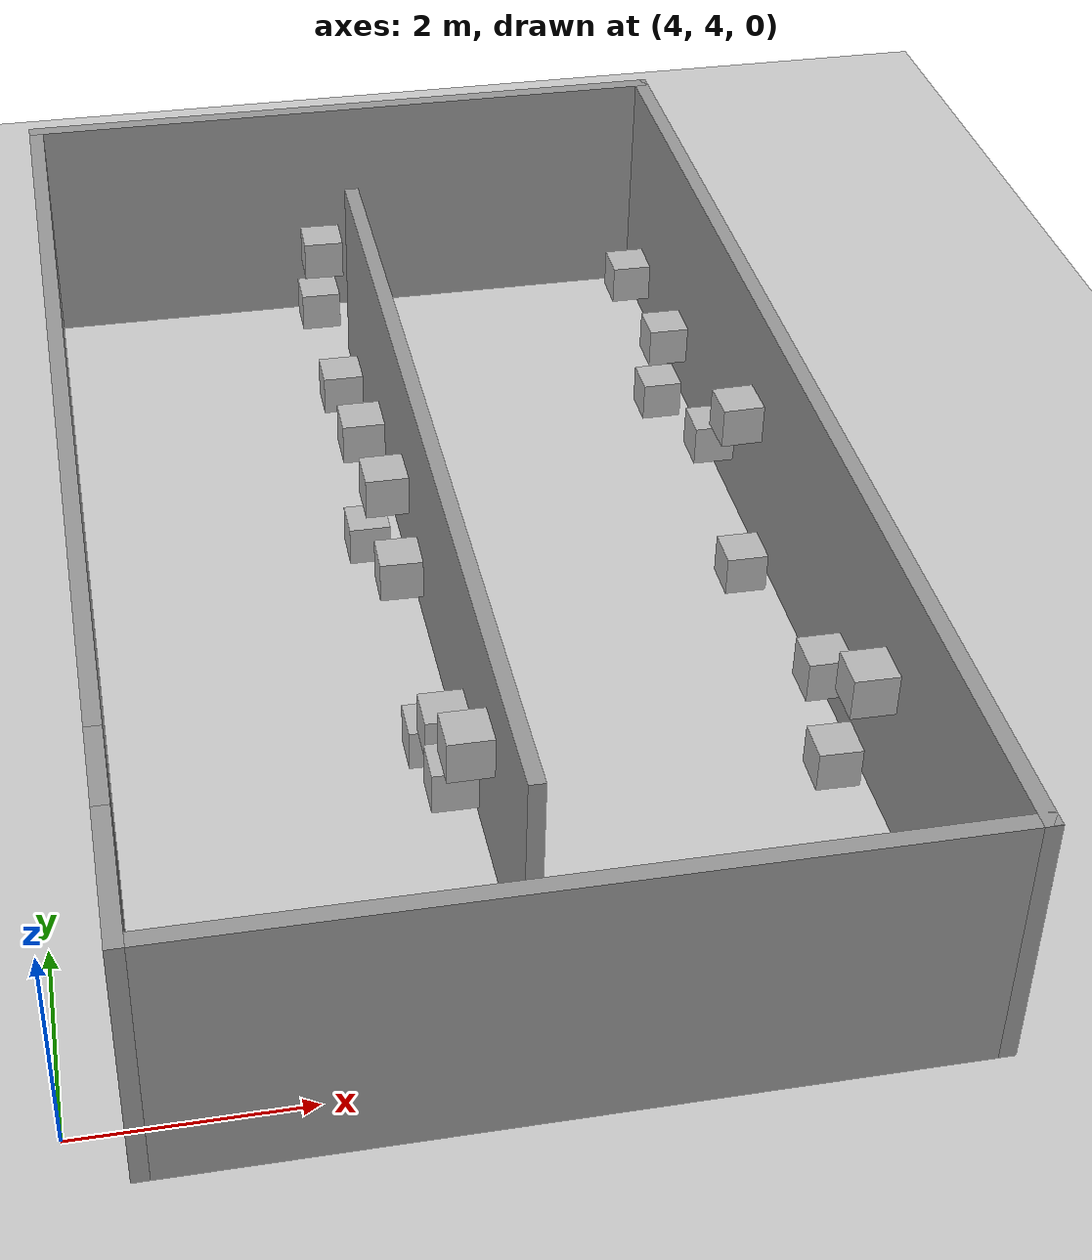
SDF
<sdf version="1.6">
 <world name="default">
  <plugin name="ros_interface_plugin" filename="librotors_gazebo_ros_interface_plugin.so"/>
  <light name="sun" type="directional">
   <pose>0 0 10 0 -0 0</pose>
   <diffuse>0.8 0.8 0.8 1</diffuse>
   <specular>0.2 0.2 0.2 1</specular>
   <attenuation>
    <range>1000</range>
    <constant>0.9</constant>
    <linear>0.01</linear>
    <quadratic>0.001</quadratic>
   </attenuation>
   <direction>-0.5 0.1 -0.9</direction>
  </light>
  <model name="ground_plane">
   <static>1</static>
   <link name="link">
    <collision name="collision">
     <geometry><plane><normal>0 0 1</normal><size>300 300</size></plane></geometry>
     <surface>
      <contact><collide_bitmask>65535</collide_bitmask></contact>
      <friction><ode><mu>100</mu><mu2>50</mu2></ode></friction>
     </surface>
    </collision>
    <visual name="visual">
     <cast_shadows>0</cast_shadows>
     <geometry><plane><normal>0 0 1</normal><size>100 100</size></plane></geometry>
     <material>
      <script><uri>file://media/materials/scripts/gazebo.material</uri><name>Gazebo/Grey</name></script>
     </material>
    </visual>
   </link>
  </model>
  <gravity>0 0 -9.8</gravity>
  <magnetic_field>6e-06 2.3e-05 -4.2e-05</magnetic_field>
  <atmosphere type="adiabatic"/>
  <physics name="default_physics" default="0" type="ode">
   <max_step_size>0.001</max_step_size>
   <real_time_factor>1</real_time_factor>
   <real_time_update_rate>1000</real_time_update_rate>
  </physics>
  <scene><ambient>0.4 0.4 0.4 1</ambient><background>0.7 0.7 0.7 1</background><shadows>0</shadows></scene>
  <spherical_coordinates>
   <surface_model>EARTH_WGS84</surface_model>
   <latitude_deg>0</latitude_deg>
   <longitude_deg>0</longitude_deg>
   <elevation>0</elevation>
   <heading_deg>0</heading_deg>
  </spherical_coordinates>
  <model name="CuboQR">
   <link name="link">
    <pose>0 0 0.25 0 -0 0</pose>
    <inertial>
     <mass>0.39</mass>
     <inertia><ixx>0.00058</ixx><ixy>0</ixy><ixz>0</ixz><iyy>0.00058</iyy><iyz>0</iyz><izz>0.00019</izz></inertia>
    </inertial>
    <collision name="collision"><geometry><box><size>0.4 0.4 0.4</size></box></geometry></collision>
    <visual name="visual">
     <geometry><box><size>0.4 0.4 0.4</size></box></geometry>
     <material>
      <script>
       <uri>model://CuboQR/materials/scripts</uri>
       <uri>model://CuboQR/materials/textures</uri>
       <name>CuboQR/Diffuse</name>
      </script>
     </material>
    </visual>
   </link>
   <pose>7.49526 5.90214 1.56559 4e-06 -4e-06 0.001213</pose>
  </model>
  <model name="CuboQR2">
   <link name="link">
    <pose>0 0 0.25 0 -0 0</pose>
    <inertial>
     <mass>0.39</mass>
     <inertia><ixx>0.00058</ixx><ixy>0</ixy><ixz>0</ixz><iyy>0.00058</iyy><iyz>0</iyz><izz>0.00019</izz></inertia>
    </inertial>
    <collision name="collision"><geometry><box><size>0.4 0.4 0.4</size></box></geometry></collision>
    <visual name="visual">
     <geometry><box><size>0.4 0.4 0.4</size></box></geometry>
     <material>
      <script>
       <uri>model://CuboQR2/materials/scripts</uri>
       <uri>model://CuboQR2/materials/textures</uri>
       <name>CuboQR2/Diffuse</name>
      </script>
     </material>
    </visual>
   </link>
   <pose>7.44003 6.26658 0.911655 1.2e-05 -4e-06 -0.00564</pose>
  </model>
  <model name="CuboQR3">
   <link name="link">
    <pose>0 0 0.25 0 -0 0</pose>
    <inertial>
     <mass>0.39</mass>
     <inertia><ixx>0.00058</ixx><ixy>0</ixy><ixz>0</ixz><iyy>0.00058</iyy><iyz>0</iyz><izz>0.00019</izz></inertia>
    </inertial>
    <collision name="collision"><geometry><box><size>0.4 0.4 0.4</size></box></geometry></collision>
    <visual name="visual">
     <geometry><box><size>0.4 0.4 0.4</size></box></geometry>
     <material>
      <script>
       <uri>model://CuboQR3/materials/scripts</uri>
       <uri>model://CuboQR3/materials/textures</uri>
       <name>CuboQR3/Diffuse</name>
      </script>
     </material>
    </visual>
   </link>
   <pose>7.49653 6.91838 0.911657 3e-06 2.2e-05 -0.002844</pose>
  </model>
  <model name="CuboQR4">
   <link name="link">
    <pose>0 0 0.25 0 -0 0</pose>
    <inertial>
     <mass>0.39</mass>
     <inertia><ixx>0.00058</ixx><ixy>0</ixy><ixz>0</ixz><iyy>0.00058</iyy><iyz>0</iyz><izz>0.00019</izz></inertia>
    </inertial>
    <collision name="collision"><geometry><box><size>0.4 0.4 0.4</size></box></geometry></collision>
    <visual name="visual">
     <geometry><box><size>0.4 0.4 0.4</size></box></geometry>
     <material>
      <script>
       <uri>model://CuboQR4/materials/scripts</uri>
       <uri>model://CuboQR4/materials/textures</uri>
       <name>CuboQR4/Diffuse</name>
      </script>
     </material>
    </visual>
   </link>
   <pose>7.46043 7.53283 0.270555 -4e-05 -3e-05 -0.004785</pose>
  </model>
  <model name="CuboQR5">
   <link name="link">
    <pose>0 0 0.25 0 -0 0</pose>
    <inertial>
     <mass>0.39</mass>
     <inertia><ixx>0.00058</ixx><ixy>0</ixy><ixz>0</ixz><iyy>0.00058</iyy><iyz>0</iyz><izz>0.00019</izz></inertia>
    </inertial>
    <collision name="collision"><geometry><box><size>0.4 0.4 0.4</size></box></geometry></collision>
    <visual name="visual">
     <geometry><box><size>0.4 0.4 0.4</size></box></geometry>
     <material>
      <script>
       <uri>model://CuboQR5/materials/scripts</uri>
       <uri>model://CuboQR5/materials/textures</uri>
       <name>CuboQR5/Diffuse</name>
      </script>
     </material>
    </visual>
   </link>
   <pose>7.40212 13.9982 0.911663 2.1e-05 -1e-06 -0.003326</pose>
  </model>
  <model name="CuboQR6">
   <link name="link">
    <pose>0 0 0.25 0 -0 0</pose>
    <inertial>
     <mass>0.39</mass>
     <inertia><ixx>0.00058</ixx><ixy>0</ixy><ixz>0</ixz><iyy>0.00058</iyy><iyz>0</iyz><izz>0.00019</izz></inertia>
    </inertial>
    <collision name="collision"><geometry><box><size>0.4 0.4 0.4</size></box></geometry></collision>
    <visual name="visual">
     <geometry><box><size>0.4 0.4 0.4</size></box></geometry>
     <material>
      <script>
       <uri>model://CuboQR6/materials/scripts</uri>
       <uri>model://CuboQR6/materials/textures</uri>
       <name>CuboQR6/Diffuse</name>
      </script>
     </material>
    </visual>
   </link>
   <pose>7.40189 12.3347 0.91166 -3e-06 -2e-06 -0.001173</pose>
  </model>
  <model name="CuboQR8">
   <link name="link">
    <pose>0 0 0.25 0 -0 0</pose>
    <inertial>
     <mass>0.39</mass>
     <inertia><ixx>0.00058</ixx><ixy>0</ixy><ixz>0</ixz><iyy>0.00058</iyy><iyz>0</iyz><izz>0.00019</izz></inertia>
    </inertial>
    <collision name="collision"><geometry><box><size>0.4 0.4 0.4</size></box></geometry></collision>
    <visual name="visual">
     <geometry><box><size>0.4 0.4 0.4</size></box></geometry>
     <material>
      <script>
       <uri>model://CuboQR8/materials/scripts</uri>
       <uri>model://CuboQR8/materials/textures</uri>
       <name>CuboQR8/Diffuse</name>
      </script>
     </material>
    </visual>
   </link>
   <pose>7.41275 9.5667 1.56559 -1.6e-05 -0 0.002114</pose>
  </model>
  <model name="CuboQR9">
   <link name="link">
    <pose>0 0 0.25 0 -0 0</pose>
    <inertial>
     <mass>0.39</mass>
     <inertia><ixx>0.00058</ixx><ixy>0</ixy><ixz>0</ixz><iyy>0.00058</iyy><iyz>0</iyz><izz>0.00019</izz></inertia>
    </inertial>
    <collision name="collision"><geometry><box><size>0.4 0.4 0.4</size></box></geometry></collision>
    <visual name="visual">
     <geometry><box><size>0.4 0.4 0.4</size></box></geometry>
     <material>
      <script>
       <uri>model://CuboQR9/materials/scripts</uri>
       <uri>model://CuboQR9/materials/textures</uri>
       <name>CuboQR9/Diffuse</name>
      </script>
     </material>
    </visual>
   </link>
   <pose>7.39214 10.5905 0.270546 -1e-06 -4e-06 -0.003663</pose>
  </model>
  <model name="CuboQR10">
   <link name="link">
    <pose>0 0 0.25 0 -0 0</pose>
    <inertial>
     <mass>0.39</mass>
     <inertia><ixx>0.00058</ixx><ixy>0</ixy><ixz>0</ixz><iyy>0.00058</iyy><iyz>0</iyz><izz>0.00019</izz></inertia>
    </inertial>
    <collision name="collision"><geometry><box><size>0.4 0.4 0.4</size></box></geometry></collision>
    <visual name="visual">
     <geometry><box><size>0.4 0.4 0.4</size></box></geometry>
     <material>
      <script>
       <uri>model://CuboQR10/materials/scripts</uri>
       <uri>model://CuboQR10/materials/textures</uri>
       <name>CuboQR10/Diffuse</name>
      </script>
     </material>
    </visual>
   </link>
   <pose>7.33888 10.4762 1.56559 -1e-06 4e-06 -0.006027</pose>
  </model>
  <model name="CuboQR12">
   <link name="link">
    <pose>0 0 0.25 0 -0 0</pose>
    <inertial>
     <mass>0.39</mass>
     <inertia><ixx>0.00058</ixx><ixy>0</ixy><ixz>0</ixz><iyy>0.00058</iyy><iyz>0</iyz><izz>0.00019</izz></inertia>
    </inertial>
    <collision name="collision"><geometry><box><size>0.4 0.4 0.4</size></box></geometry></collision>
    <visual name="visual">
     <geometry><box><size>0.4 0.4 0.4</size></box></geometry>
     <material>
      <script>
       <uri>model://CuboQR12/materials/scripts</uri>
       <uri>model://CuboQR12/materials/textures</uri>
       <name>CuboQR12/Diffuse</name>
      </script>
     </material>
    </visual>
   </link>
   <pose>10.9014 9.46934 0.270546 1e-06 2e-06 -0.00234</pose>
  </model>
  <model name="CuboQR14">
   <link name="link">
    <pose>0 0 0.25 0 -0 0</pose>
    <inertial>
     <mass>0.39</mass>
     <inertia><ixx>0.00058</ixx><ixy>0</ixy><ixz>0</ixz><iyy>0.00058</iyy><iyz>0</iyz><izz>0.00019</izz></inertia>
    </inertial>
    <collision name="collision"><geometry><box><size>0.4 0.4 0.4</size></box></geometry></collision>
    <visual name="visual">
     <geometry><box><size>0.4 0.4 0.4</size></box></geometry>
     <material>
      <script>
       <uri>model://CuboQR14/materials/scripts</uri>
       <uri>model://CuboQR14/materials/textures</uri>
       <name>CuboQR14/Diffuse</name>
      </script>
     </material>
    </visual>
   </link>
   <pose>10.9065 12.6307 0.911664 -2e-06 -2e-06 -0.001994</pose>
  </model>
  <model name="CuboQR15">
   <link name="link">
    <pose>0 0 0.25 0 -0 0</pose>
    <inertial>
     <mass>0.39</mass>
     <inertia><ixx>0.00058</ixx><ixy>0</ixy><ixz>0</ixz><iyy>0.00058</iyy><iyz>0</iyz><izz>0.00019</izz></inertia>
    </inertial>
    <collision name="collision"><geometry><box><size>0.4 0.4 0.4</size></box></geometry></collision>
    <visual name="visual">
     <geometry><box><size>0.4 0.4 0.4</size></box></geometry>
     <material>
      <script>
       <uri>model://CuboQR15/materials/scripts</uri>
       <uri>model://CuboQR15/materials/textures</uri>
       <name>CuboQR15/Diffuse</name>
      </script>
     </material>
    </visual>
   </link>
   <pose>10.8592 12.5814 0.270555 0 9e-06 0.006165</pose>
  </model>
  <model name="CuboQR17">
   <link name="link">
    <pose>0 0 0.25 0 -0 0</pose>
    <inertial>
     <mass>0.39</mass>
     <inertia><ixx>0.00058</ixx><ixy>0</ixy><ixz>0</ixz><iyy>0.00058</iyy><iyz>0</iyz><izz>0.00019</izz></inertia>
    </inertial>
    <collision name="collision"><geometry><box><size>0.4 0.4 0.4</size></box></geometry></collision>
    <visual name="visual">
     <geometry><box><size>0.4 0.4 0.4</size></box></geometry>
     <material>
      <script>
       <uri>model://CuboQR17/materials/scripts</uri>
       <uri>model://CuboQR17/materials/textures</uri>
       <name>CuboQR17/Diffuse</name>
      </script>
     </material>
    </visual>
   </link>
   <pose>11.0867 13.9659 1.16166 1.5708 -0 -1.57621</pose>
  </model>
  <model name="CuboQR19">
   <link name="link">
    <pose>0 0 0.25 0 -0 0</pose>
    <inertial>
     <mass>0.39</mass>
     <inertia><ixx>0.00058</ixx><ixy>0</ixy><ixz>0</ixz><iyy>0.00058</iyy><iyz>0</iyz><izz>0.00019</izz></inertia>
    </inertial>
    <collision name="collision"><geometry><box><size>0.4 0.4 0.4</size></box></geometry></collision>
    <visual name="visual">
     <geometry><box><size>0.4 0.4 0.4</size></box></geometry>
     <material>
      <script>
       <uri>model://CuboQR19/materials/scripts</uri>
       <uri>model://CuboQR19/materials/textures</uri>
       <name>CuboQR19/Diffuse</name>
      </script>
     </material>
    </visual>
   </link>
   <pose>10.6658 6.06998 1.81558 -0.373825 1.57077 -0.380281</pose>
  </model>
  <model name="CuboQR20">
   <link name="link">
    <pose>0 0 0.25 0 -0 0</pose>
    <inertial>
     <mass>0.39</mass>
     <inertia><ixx>0.00058</ixx><ixy>0</ixy><ixz>0</ixz><iyy>0.00058</iyy><iyz>0</iyz><izz>0.00019</izz></inertia>
    </inertial>
    <collision name="collision"><geometry><box><size>0.4 0.4 0.4</size></box></geometry></collision>
    <visual name="visual">
     <geometry><box><size>0.4 0.4 0.4</size></box></geometry>
     <material>
      <script>
       <uri>model://CuboQR20/materials/scripts</uri>
       <uri>model://CuboQR20/materials/textures</uri>
       <name>CuboQR20/Diffuse</name>
      </script>
     </material>
    </visual>
   </link>
   <pose>10.6731 6.62514 0.520539 -1.25865 1.57077 -1.27424</pose>
  </model>
  <model name="CuboQR26">
   <link name="link">
    <pose>0 0 0.25 0 -0 0</pose>
    <inertial>
     <mass>0.39</mass>
     <inertia><ixx>0.00058</ixx><ixy>0</ixy><ixz>0</ixz><iyy>0.00058</iyy><iyz>0</iyz><izz>0.00019</izz></inertia>
    </inertial>
    <collision name="collision"><geometry><box><size>0.4 0.4 0.4</size></box></geometry></collision>
    <visual name="visual">
     <geometry><box><size>0.4 0.4 0.4</size></box></geometry>
     <material>
      <script>
       <uri>model://CuboQR26/materials/scripts</uri>
       <uri>model://CuboQR26/materials/textures</uri>
       <name>CuboQR26/Diffuse</name>
      </script>
     </material>
    </visual>
   </link>
   <pose>11.1609 7.07821 1.16166 1.73977 -1.57078 -1.74086</pose>
  </model>
  <model name="CuboQR27">
   <link name="link">
    <pose>0 0 0.25 0 -0 0</pose>
    <inertial>
     <mass>0.39</mass>
     <inertia><ixx>0.00058</ixx><ixy>0</ixy><ixz>0</ixz><iyy>0.00058</iyy><iyz>0</iyz><izz>0.00019</izz></inertia>
    </inertial>
    <collision name="collision"><geometry><box><size>0.4 0.4 0.4</size></box></geometry></collision>
    <visual name="visual">
     <geometry><box><size>0.4 0.4 0.4</size></box></geometry>
     <material>
      <script>
       <uri>model://CuboQR27/materials/scripts</uri>
       <uri>model://CuboQR27/materials/textures</uri>
       <name>CuboQR27/Diffuse</name>
      </script>
     </material>
    </visual>
   </link>
   <pose>10.8989 10.7834 0.911656 0 -3e-06 -0.000849</pose>
  </model>
  <model name="CuboQR29">
   <link name="link">
    <pose>0 0 0.25 0 -0 0</pose>
    <inertial>
     <mass>0.39</mass>
     <inertia><ixx>0.00058</ixx><ixy>0</ixy><ixz>0</ixz><iyy>0.00058</iyy><iyz>0</iyz><izz>0.00019</izz></inertia>
    </inertial>
    <collision name="collision"><geometry><box><size>0.4 0.4 0.4</size></box></geometry></collision>
    <visual name="visual">
     <geometry><box><size>0.4 0.4 0.4</size></box></geometry>
     <material>
      <script>
       <uri>model://CuboQR29/materials/scripts</uri>
       <uri>model://CuboQR29/materials/textures</uri>
       <name>CuboQR29/Diffuse</name>
      </script>
     </material>
    </visual>
   </link>
   <pose>10.9446 10.1115 1.56557 1e-06 1e-06 0.026229</pose>
  </model>
  <model name="CuboQR30">
   <link name="link">
    <pose>0 0 0.25 0 -0 0</pose>
    <inertial>
     <mass>0.39</mass>
     <inertia><ixx>0.00058</ixx><ixy>0</ixy><ixz>0</ixz><iyy>0.00058</iyy><iyz>0</iyz><izz>0.00019</izz></inertia>
    </inertial>
    <collision name="collision"><geometry><box><size>0.4 0.4 0.4</size></box></geometry></collision>
    <visual name="visual">
     <geometry><box><size>0.4 0.4 0.4</size></box></geometry>
     <material>
      <script>
       <uri>model://CuboQR30/materials/scripts</uri>
       <uri>model://CuboQR30/materials/textures</uri>
       <name>CuboQR30/Diffuse</name>
      </script>
     </material>
    </visual>
   </link>
   <pose>7.47403 9.14242 0.911658 -2e-06 8e-06 -0.022401</pose>
  </model>
  <model name="CuboQR32">
   <link name="link">
    <pose>0 0 0.25 0 -0 0</pose>
    <inertial>
     <mass>0.39</mass>
     <inertia><ixx>0.00058</ixx><ixy>0</ixy><ixz>0</ixz><iyy>0.00058</iyy><iyz>0</iyz><izz>0.00019</izz></inertia>
    </inertial>
    <collision name="collision"><geometry><box><size>0.4 0.4 0.4</size></box></geometry></collision>
    <visual name="visual">
     <geometry><box><size>0.4 0.4 0.4</size></box></geometry>
     <material>
      <script>
       <uri>model://CuboQR32/materials/scripts</uri>
       <uri>model://CuboQR32/materials/textures</uri>
       <name>CuboQR32/Diffuse</name>
      </script>
     </material>
    </visual>
   </link>
   <pose>7.44433 13.9504 1.56559 -8e-06 -4e-06 -0.023543</pose>
  </model>
  <model name="Estanterias2">
   <link name="Wall_7">
    <pose>-9.54199 -5.19373 -0.244468 0 -0 1.5708</pose>
    <inertial>
     <inertia><ixx>0</ixx><ixy>0</ixy><ixz>0</ixz><iyy>0</iyy><iyz>0</iyz><izz>0</izz></inertia>
     <mass>0</mass>
    </inertial>
    <visual name="Wall_7_Visual">
     <pose>0 0 1.25 0 -0 0</pose>
     <geometry><box><size>9.74609 0.15 2.08966</size></box></geometry>
     <material>
      <script><uri>file://media/materials/scripts/gazebo.material</uri><name>Gazebo/Grey</name></script>
      <ambient>1 1 1 1</ambient>
      <shader type="pixel"/>
      <diffuse>0.7 0.7 0.7 1</diffuse>
      <specular>0.01 0.01 0.01 1</specular>
      <emissive>0 0 0 1</emissive>
     </material>
     <meta><layer>0</layer></meta>
    </visual>
    <collision name="Wall_7_Collision">
     <pose>0 0 1.25 0 -0 0</pose>
     <geometry><box><size>9.74609 0.15 2.08966</size></box></geometry>
     <surface>
      <friction>
       <ode><mu>1</mu><mu2>1</mu2><fdir1>0 0 0</fdir1><slip1>0</slip1><slip2>0</slip2></ode>
       <torsional>
        <coefficient>1</coefficient>
        <patch_radius>0</patch_radius>
        <surface_radius>0</surface_radius>
        <use_patch_radius>1</use_patch_radius>
        <ode><slip>0</slip></ode>
       </torsional>
      </friction>
      <bounce><restitution_coefficient>0</restitution_coefficient><threshold>1e+06</threshold></bounce>
      <contact>
       <collide_without_contact>0</collide_without_contact>
       <collide_without_contact_bitmask>1</collide_without_contact_bitmask>
       <collide_bitmask>1</collide_bitmask>
       <ode>
        <soft_cfm>0</soft_cfm>
        <soft_erp>0.2</soft_erp>
        <kp>1e+13</kp>
        <kd>1</kd>
        <max_vel>0.01</max_vel>
        <min_depth>0</min_depth>
       </ode>
       <bullet>
        <split_impulse>1</split_impulse>
        <split_impulse_penetration_threshold>-0.01</split_impulse_penetration_threshold>
        <soft_cfm>0</soft_cfm>
        <soft_erp>0.2</soft_erp>
        <kp>1e+13</kp>
        <kd>1</kd>
       </bullet>
      </contact>
     </surface>
    </collision>
   </link>
   <static>1</static>
   <pose>17.4434 15.1661 0 0 -0 0</pose>
  </model>
  <model name="qrware">
   <pose>7.98806 9.76227 0 0 -0 0</pose>
   <link name="Wall_2">
    <pose>-3.425 0 0 0 -0 1.5708</pose>
    <visual name="Wall_2_Visual_0">
     <pose>-5.51907 0 1.25 0 -0 0</pose>
     <geometry><box><size>1.46186 0.15 2.5</size></box></geometry>
     <material>
      <script><uri>file://media/materials/scripts/gazebo.material</uri><name>Gazebo/Grey</name></script>
      <ambient>1 1 1 1</ambient>
     </material>
     <meta><layer>0</layer></meta>
    </visual>
    <collision name="Wall_2_Collision_0">
     <geometry><box><size>1.46186 0.15 2.5</size></box></geometry>
     <pose>-5.51907 0 1.25 0 -0 0</pose>
    </collision>
    <visual name="Wall_2_Visual_1">
     <pose>1.18093 0 1.25 0 -0 0</pose>
     <geometry><box><size>10.1381 0.15 2.5</size></box></geometry>
     <material>
      <script><uri>file://media/materials/scripts/gazebo.material</uri><name>Gazebo/Grey</name></script>
      <ambient>1 1 1 1</ambient>
     </material>
     <meta><layer>0</layer></meta>
    </visual>
    <collision name="Wall_2_Collision_1">
     <geometry><box><size>10.1381 0.15 2.5</size></box></geometry>
     <pose>1.18093 0 1.25 0 -0 0</pose>
    </collision>
    <visual name="Wall_2_Visual_2">
     <pose>-4.33814 0 2.25 0 -0 0</pose>
     <geometry><box><size>0.9 0.15 0.5</size></box></geometry>
     <material>
      <script><uri>file://media/materials/scripts/gazebo.material</uri><name>Gazebo/Grey</name></script>
      <ambient>1 1 1 1</ambient>
     </material>
     <meta><layer>0</layer></meta>
    </visual>
    <collision name="Wall_2_Collision_2">
     <geometry><box><size>0.9 0.15 0.5</size></box></geometry>
     <pose>-4.33814 0 2.25 0 -0 0</pose>
    </collision>
   </link>
   <link name="Wall_3">
    <collision name="Wall_3_Collision">
     <geometry><box><size>7 0.15 2.5</size></box></geometry>
     <pose>0 0 1.25 0 -0 0</pose>
    </collision>
    <visual name="Wall_3_Visual">
     <pose>0 0 1.25 0 -0 0</pose>
     <geometry><box><size>7 0.15 2.5</size></box></geometry>
     <material>
      <script><uri>file://media/materials/scripts/gazebo.material</uri><name>Gazebo/Grey</name></script>
      <ambient>1 1 1 1</ambient>
     </material>
     <meta><layer>0</layer></meta>
    </visual>
    <pose>0 6.175 0 0 -0 0</pose>
   </link>
   <link name="Wall_4">
    <collision name="Wall_4_Collision">
     <geometry><box><size>12.5 0.15 2.5</size></box></geometry>
     <pose>0 0 1.25 0 -0 0</pose>
    </collision>
    <visual name="Wall_4_Visual">
     <pose>0 0 1.25 0 -0 0</pose>
     <geometry><box><size>12.5 0.15 2.5</size></box></geometry>
     <material>
      <script><uri>file://media/materials/scripts/gazebo.material</uri><name>Gazebo/Grey</name></script>
      <ambient>1 1 1 1</ambient>
     </material>
     <meta><layer>0</layer></meta>
    </visual>
    <pose>3.425 0 0 0 0 -1.5708</pose>
   </link>
   <link name="Wall_6">
    <collision name="Wall_6_Collision">
     <geometry><box><size>7 0.15 2.5</size></box></geometry>
     <pose>0 0 1.25 0 -0 0</pose>
    </collision>
    <visual name="Wall_6_Visual">
     <pose>0 0 1.25 0 -0 0</pose>
     <geometry><box><size>7 0.15 2.5</size></box></geometry>
     <material>
      <script><uri>file://media/materials/scripts/gazebo.material</uri><name>Gazebo/Grey</name></script>
      <ambient>1 1 1 1</ambient>
     </material>
     <meta><layer>0</layer></meta>
    </visual>
    <pose>0 -6.175 0 0 -0 0</pose>
   </link>
   <static>1</static>
  </model>
 </world>
</sdf>
